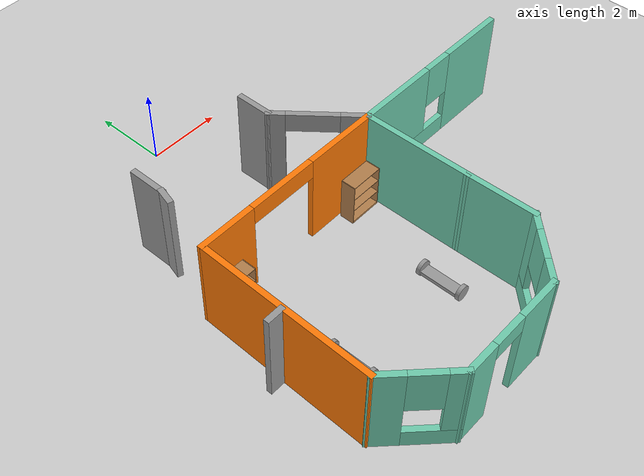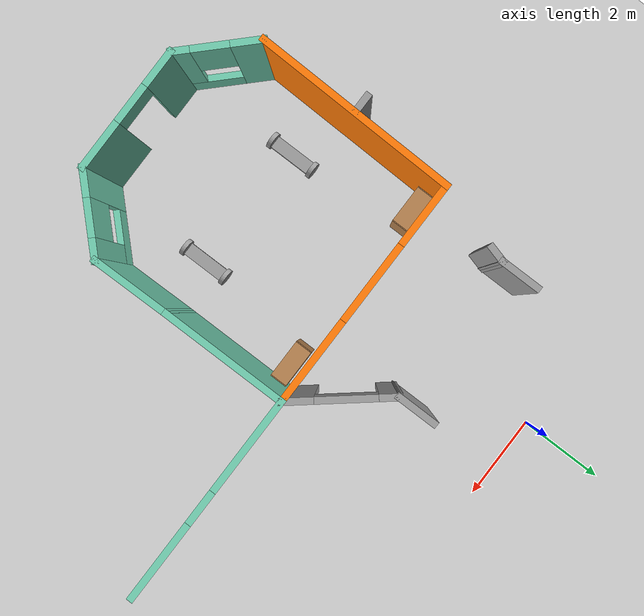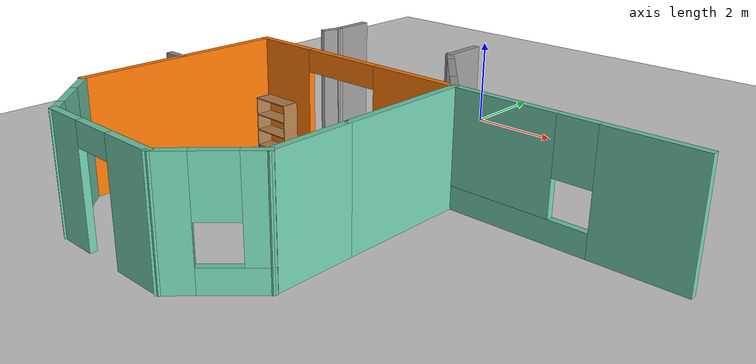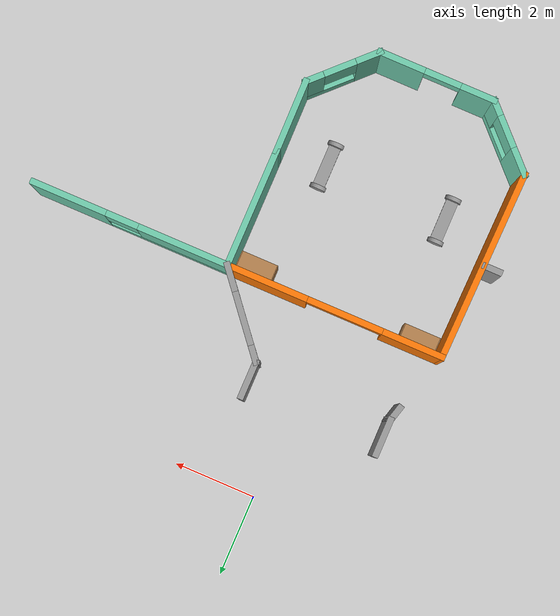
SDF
<sdf version="1.6">
 <world name="default">
  <model name="ground_plane">
   <static>1</static>
   <link name="link">
    <collision name="collision">
     <geometry><plane><normal>0 0 1</normal><size>100 100</size></plane></geometry>
     <surface>
      <contact><collide_bitmask>65535</collide_bitmask></contact>
      <friction><ode><mu>100</mu><mu2>50</mu2></ode></friction>
     </surface>
    </collision>
    <visual name="visual">
     <cast_shadows>0</cast_shadows>
     <geometry><plane><normal>0 0 1</normal><size>100 100</size></plane></geometry>
     <material>
      <script><uri>file://media/materials/scripts/gazebo.material</uri><name>Gazebo/Grey</name></script>
     </material>
    </visual>
   </link>
  </model>
  <model name="model">
   <pose>-1.34408 -2.0758 0 0 -0 0</pose>
   <link name="Wall_12">
    <pose>6.41224 -2.63039 0 0 -0 3.14159</pose>
    <visual name="Wall_12_Visual_0">
     <pose>-1.55241 0 1.25 0 -0 0</pose>
     <geometry><box><size>1.89517 0.15 2.5</size></box></geometry>
     <material>
      <script><uri>file://media/materials/scripts/gazebo.material</uri><name>Gazebo/Grey</name></script>
      <ambient>0.435294 0.796078 0.67451 1</ambient>
     </material>
     <meta><layer>0</layer></meta>
    </visual>
    <collision name="Wall_12_Collision_0">
     <geometry><box><size>1.89517 0.15 2.5</size></box></geometry>
     <pose>-1.55241 0 1.25 0 -0 0</pose>
    </collision>
    <visual name="Wall_12_Visual_1">
     <pose>0.947587 0 0.25 0 -0 0</pose>
     <geometry><box><size>3.10483 0.15 0.5</size></box></geometry>
     <material>
      <script><uri>file://media/materials/scripts/gazebo.material</uri><name>Gazebo/Grey</name></script>
      <ambient>0.435294 0.796078 0.67451 1</ambient>
     </material>
     <meta><layer>0</layer></meta>
    </visual>
    <collision name="Wall_12_Collision_1">
     <geometry><box><size>3.10483 0.15 0.5</size></box></geometry>
     <pose>0.947587 0 0.25 0 -0 0</pose>
    </collision>
    <visual name="Wall_12_Visual_2">
     <pose>1.34759 0 1.5 0 -0 0</pose>
     <geometry><box><size>2.30483 0.15 2</size></box></geometry>
     <material>
      <script><uri>file://media/materials/scripts/gazebo.material</uri><name>Gazebo/Grey</name></script>
      <ambient>0.435294 0.796078 0.67451 1</ambient>
     </material>
     <meta><layer>0</layer></meta>
    </visual>
    <collision name="Wall_12_Collision_2">
     <geometry><box><size>2.30483 0.15 2</size></box></geometry>
     <pose>1.34759 0 1.5 0 -0 0</pose>
    </collision>
    <visual name="Wall_12_Visual_3">
     <pose>-0.204827 0 1.9 0 -0 0</pose>
     <geometry><box><size>0.8 0.15 1.2</size></box></geometry>
     <material>
      <script><uri>file://media/materials/scripts/gazebo.material</uri><name>Gazebo/Grey</name></script>
      <ambient>0.435294 0.796078 0.67451 1</ambient>
     </material>
     <meta><layer>0</layer></meta>
    </visual>
    <collision name="Wall_12_Collision_3">
     <geometry><box><size>0.8 0.15 1.2</size></box></geometry>
     <pose>-0.204827 0 1.9 0 -0 0</pose>
    </collision>
   </link>
   <link name="Wall_13">
    <collision name="Wall_13_Collision">
     <geometry><box><size>3 0.15 2.5</size></box></geometry>
     <pose>0 0 1.25 0 -0 0</pose>
    </collision>
    <visual name="Wall_13_Visual">
     <pose>0 0 1.25 0 -0 0</pose>
     <geometry><box><size>3 0.15 2.5</size></box></geometry>
     <material>
      <script><uri>file://media/materials/scripts/gazebo.material</uri><name>Gazebo/Grey</name></script>
      <ambient>0.435294 0.796078 0.67451 1</ambient>
     </material>
     <meta><layer>0</layer></meta>
    </visual>
    <pose>3.98724 -4.05539 0 0 -0 -1.5708</pose>
   </link>
   <link name="Wall_58">
    <pose>-0.808686 -7.88447 0 0 -0 -0.785398</pose>
    <visual name="Wall_58_Visual_0">
     <pose>-0.62591 0 1.25 0 -0 0</pose>
     <geometry><box><size>0.74818 0.15 2.5</size></box></geometry>
     <material>
      <script><uri>file://media/materials/scripts/gazebo.material</uri><name>Gazebo/Grey</name></script>
      <ambient>0.435294 0.796078 0.67451 1</ambient>
     </material>
     <meta><layer>0</layer></meta>
    </visual>
    <collision name="Wall_58_Collision_0">
     <geometry><box><size>0.74818 0.15 2.5</size></box></geometry>
     <pose>-0.62591 0 1.25 0 -0 0</pose>
    </collision>
    <visual name="Wall_58_Visual_1">
     <pose>0.37409 0 0.25 0 -0 0</pose>
     <geometry><box><size>1.25182 0.15 0.5</size></box></geometry>
     <material>
      <script><uri>file://media/materials/scripts/gazebo.material</uri><name>Gazebo/Grey</name></script>
      <ambient>0.435294 0.796078 0.67451 1</ambient>
     </material>
     <meta><layer>0</layer></meta>
    </visual>
    <collision name="Wall_58_Collision_1">
     <geometry><box><size>1.25182 0.15 0.5</size></box></geometry>
     <pose>0.37409 0 0.25 0 -0 0</pose>
    </collision>
    <visual name="Wall_58_Visual_2">
     <pose>0.77409 0 1.5 0 -0 0</pose>
     <geometry><box><size>0.45182 0.15 2</size></box></geometry>
     <material>
      <script><uri>file://media/materials/scripts/gazebo.material</uri><name>Gazebo/Grey</name></script>
      <ambient>0.435294 0.796078 0.67451 1</ambient>
     </material>
     <meta><layer>0</layer></meta>
    </visual>
    <collision name="Wall_58_Collision_2">
     <geometry><box><size>0.45182 0.15 2</size></box></geometry>
     <pose>0.77409 0 1.5 0 -0 0</pose>
    </collision>
    <visual name="Wall_58_Visual_3">
     <pose>0.14818 0 1.9 0 -0 0</pose>
     <geometry><box><size>0.8 0.15 1.2</size></box></geometry>
     <material>
      <script><uri>file://media/materials/scripts/gazebo.material</uri><name>Gazebo/Grey</name></script>
      <ambient>0.435294 0.796078 0.67451 1</ambient>
     </material>
     <meta><layer>0</layer></meta>
    </visual>
    <collision name="Wall_58_Collision_3">
     <geometry><box><size>0.8 0.15 1.2</size></box></geometry>
     <pose>0.14818 0 1.9 0 -0 0</pose>
    </collision>
   </link>
   <link name="Wall_59">
    <pose>1.27039 -8.53854 0 0 -0 0</pose>
    <visual name="Wall_59_Visual_0">
     <pose>-1.04657 0 1.25 0 -0 0</pose>
     <geometry><box><size>0.906857 0.15 2.5</size></box></geometry>
     <material>
      <script><uri>file://media/materials/scripts/gazebo.material</uri><name>Gazebo/Grey</name></script>
      <ambient>0.435294 0.796078 0.67451 1</ambient>
     </material>
     <meta><layer>0</layer></meta>
    </visual>
    <collision name="Wall_59_Collision_0">
     <geometry><box><size>0.906857 0.15 2.5</size></box></geometry>
     <pose>-1.04657 0 1.25 0 -0 0</pose>
    </collision>
    <visual name="Wall_59_Visual_1">
     <pose>0.903429 0 1.25 0 -0 0</pose>
     <geometry><box><size>1.19314 0.15 2.5</size></box></geometry>
     <material>
      <script><uri>file://media/materials/scripts/gazebo.material</uri><name>Gazebo/Grey</name></script>
      <ambient>0.435294 0.796078 0.67451 1</ambient>
     </material>
     <meta><layer>0</layer></meta>
    </visual>
    <collision name="Wall_59_Collision_1">
     <geometry><box><size>1.19314 0.15 2.5</size></box></geometry>
     <pose>0.903429 0 1.25 0 -0 0</pose>
    </collision>
    <visual name="Wall_59_Visual_2">
     <pose>-0.143143 0 2.25 0 -0 0</pose>
     <geometry><box><size>0.9 0.15 0.5</size></box></geometry>
     <material>
      <script><uri>file://media/materials/scripts/gazebo.material</uri><name>Gazebo/Grey</name></script>
      <ambient>0.435294 0.796078 0.67451 1</ambient>
     </material>
     <meta><layer>0</layer></meta>
    </visual>
    <collision name="Wall_59_Collision_2">
     <geometry><box><size>0.9 0.15 0.5</size></box></geometry>
     <pose>-0.143143 0 2.25 0 -0 0</pose>
    </collision>
   </link>
   <link name="Wall_62">
    <pose>3.34946 -7.88447 0 0 -0 0.785398</pose>
    <visual name="Wall_62_Visual_0">
     <pose>-0.661474 0 1.25 0 -0 0</pose>
     <geometry><box><size>0.677052 0.15 2.5</size></box></geometry>
     <material>
      <script><uri>file://media/materials/scripts/gazebo.material</uri><name>Gazebo/Grey</name></script>
      <ambient>0.435294 0.796078 0.67451 1</ambient>
     </material>
     <meta><layer>0</layer></meta>
    </visual>
    <collision name="Wall_62_Collision_0">
     <geometry><box><size>0.677052 0.15 2.5</size></box></geometry>
     <pose>-0.661474 0 1.25 0 -0 0</pose>
    </collision>
    <visual name="Wall_62_Visual_1">
     <pose>0.338526 0 0.25 0 -0 0</pose>
     <geometry><box><size>1.32295 0.15 0.5</size></box></geometry>
     <material>
      <script><uri>file://media/materials/scripts/gazebo.material</uri><name>Gazebo/Grey</name></script>
      <ambient>0.435294 0.796078 0.67451 1</ambient>
     </material>
     <meta><layer>0</layer></meta>
    </visual>
    <collision name="Wall_62_Collision_1">
     <geometry><box><size>1.32295 0.15 0.5</size></box></geometry>
     <pose>0.338526 0 0.25 0 -0 0</pose>
    </collision>
    <visual name="Wall_62_Visual_2">
     <pose>0.738526 0 1.5 0 -0 0</pose>
     <geometry><box><size>0.522948 0.15 2</size></box></geometry>
     <material>
      <script><uri>file://media/materials/scripts/gazebo.material</uri><name>Gazebo/Grey</name></script>
      <ambient>0.435294 0.796078 0.67451 1</ambient>
     </material>
     <meta><layer>0</layer></meta>
    </visual>
    <collision name="Wall_62_Collision_2">
     <geometry><box><size>0.522948 0.15 2</size></box></geometry>
     <pose>0.738526 0 1.5 0 -0 0</pose>
    </collision>
    <visual name="Wall_62_Visual_3">
     <pose>0.077052 0 1.9 0 -0 0</pose>
     <geometry><box><size>0.8 0.15 1.2</size></box></geometry>
     <material>
      <script><uri>file://media/materials/scripts/gazebo.material</uri><name>Gazebo/Grey</name></script>
      <ambient>0.435294 0.796078 0.67451 1</ambient>
     </material>
     <meta><layer>0</layer></meta>
    </visual>
    <collision name="Wall_62_Collision_3">
     <geometry><box><size>0.8 0.15 1.2</size></box></geometry>
     <pose>0.077052 0 1.9 0 -0 0</pose>
    </collision>
   </link>
   <link name="Wall_63">
    <collision name="Wall_63_Collision">
     <geometry><box><size>1.90008 0.15 2.5</size></box></geometry>
     <pose>0 0 1.25 0 -0 0</pose>
    </collision>
    <visual name="Wall_63_Visual">
     <pose>0 0 1.25 0 -0 0</pose>
     <geometry><box><size>1.90008 0.15 2.5</size></box></geometry>
     <material>
      <script><uri>file://media/materials/scripts/gazebo.material</uri><name>Gazebo/Grey</name></script>
      <ambient>0.435294 0.796078 0.67451 1</ambient>
     </material>
     <meta><layer>0</layer></meta>
    </visual>
    <pose>3.99539 -6.35539 0 0 -0 1.58011</pose>
   </link>
   <link name="Wall_69">
    <collision name="Wall_69_Collision">
     <geometry><box><size>4.75109 0.15 2.5</size></box></geometry>
     <pose>0 0 1.25 0 -0 0</pose>
    </collision>
    <visual name="Wall_69_Visual">
     <pose>0 0 1.25 0 -0 0</pose>
     <geometry><box><size>4.75109 0.15 2.5</size></box></geometry>
     <material>
      <script><uri>file://media/materials/scripts/gazebo.material</uri><name>Gazebo/Grey</name></script>
      <ambient>0.996078 0.47451 0.0196078 1</ambient>
     </material>
     <meta><layer>0</layer></meta>
    </visual>
    <pose>-1.41276 -4.93039 0 0 -0 1.54906</pose>
   </link>
   <link name="Wall_71">
    <pose>1.31224 -2.63039 0 0 -0 0</pose>
    <visual name="Wall_71_Visual_0">
     <pose>-1.97562 0 1.25 0 -0 0</pose>
     <geometry><box><size>1.54876 0.15 2.5</size></box></geometry>
     <material>
      <script><uri>file://media/materials/scripts/gazebo.material</uri><name>Gazebo/Grey</name></script>
      <ambient>0.996078 0.47451 0.0196078 1</ambient>
     </material>
     <meta><layer>0</layer></meta>
    </visual>
    <collision name="Wall_71_Collision_0">
     <geometry><box><size>1.54876 0.15 2.5</size></box></geometry>
     <pose>-1.97562 0 1.25 0 -0 0</pose>
    </collision>
    <visual name="Wall_71_Visual_1">
     <pose>1.71382 0 1.25 0 -0 0</pose>
     <geometry><box><size>2.07235 0.15 2.5</size></box></geometry>
     <material>
      <script><uri>file://media/materials/scripts/gazebo.material</uri><name>Gazebo/Grey</name></script>
      <ambient>0.996078 0.47451 0.0196078 1</ambient>
     </material>
     <meta><layer>0</layer></meta>
    </visual>
    <collision name="Wall_71_Collision_1">
     <geometry><box><size>2.07235 0.15 2.5</size></box></geometry>
     <pose>1.71382 0 1.25 0 -0 0</pose>
    </collision>
    <visual name="Wall_71_Visual_2">
     <pose>-0.261794 0 2.25 0 -0 0</pose>
     <geometry><box><size>1.87889 0.15 0.5</size></box></geometry>
     <material>
      <script><uri>file://media/materials/scripts/gazebo.material</uri><name>Gazebo/Grey</name></script>
      <ambient>0.996078 0.47451 0.0196078 1</ambient>
     </material>
     <meta><layer>0</layer></meta>
    </visual>
    <collision name="Wall_71_Collision_2">
     <geometry><box><size>1.87889 0.15 0.5</size></box></geometry>
     <pose>-0.261794 0 2.25 0 -0 0</pose>
    </collision>
   </link>
   <link name="Wall_75">
    <collision name="Wall_75_Collision">
     <geometry><box><size>0.5 0.15 2.5</size></box></geometry>
     <pose>0 0 1.25 0 -0 0</pose>
    </collision>
    <visual name="Wall_75_Visual">
     <pose>0 0 1.25 0 -0 0</pose>
     <geometry><box><size>0.5 0.15 2.5</size></box></geometry>
     <material>
      <script><uri>file://media/materials/scripts/gazebo.material</uri><name>Gazebo/Grey</name></script>
      <ambient>0 0 0 1</ambient>
     </material>
     <meta><layer>0</layer></meta>
    </visual>
    <pose>-1.63295 -4.93634 0 0 -0 3.14159</pose>
   </link>
   <link name="Wall_87">
    <collision name="Wall_87_Collision">
     <geometry><box><size>1 0.15 2.5</size></box></geometry>
     <pose>0 0 1.25 0 -0 0</pose>
    </collision>
    <visual name="Wall_87_Visual">
     <pose>0 0 1.25 0 -0 0</pose>
     <geometry><box><size>1 0.15 2.5</size></box></geometry>
     <material>
      <script><uri>file://media/materials/scripts/gazebo.material</uri><name>Gazebo/Grey</name></script>
      <ambient>0 0 0 1</ambient>
     </material>
     <meta><layer>0</layer></meta>
    </visual>
    <pose>-0.84409 -0.418128 0 0 -0 -1.5708</pose>
   </link>
   <link name="Wall_88">
    <collision name="Wall_88_Collision">
     <geometry><box><size>0.5 0.15 2.5</size></box></geometry>
     <pose>0 0 1.25 0 -0 0</pose>
    </collision>
    <visual name="Wall_88_Visual">
     <pose>0 0 1.25 0 -0 0</pose>
     <geometry><box><size>0.5 0.15 2.5</size></box></geometry>
     <material>
      <script><uri>file://media/materials/scripts/gazebo.material</uri><name>Gazebo/Grey</name></script>
      <ambient>0 0 0 1</ambient>
     </material>
     <meta><layer>0</layer></meta>
    </visual>
    <pose>-0.889384 -1.01217 0 0 -0 -1.8326</pose>
   </link>
   <link name="Wall_91">
    <collision name="Wall_91_Collision">
     <geometry><box><size>1 0.15 2.5</size></box></geometry>
     <pose>0 0 1.25 0 -0 0</pose>
    </collision>
    <visual name="Wall_91_Visual">
     <pose>0 0 1.25 0 -0 0</pose>
     <geometry><box><size>1 0.15 2.5</size></box></geometry>
     <material>
      <script><uri>file://media/materials/scripts/gazebo.material</uri><name>Gazebo/Grey</name></script>
      <ambient>0 0 0 1</ambient>
     </material>
     <meta><layer>0</layer></meta>
    </visual>
    <pose>2.50591 -0.418128 0 0 -0 -1.5708</pose>
   </link>
   <link name="Wall_92">
    <pose>3.24657 -1.73676 0 0 -0 -0.878724</pose>
    <visual name="Wall_92_Visual_0">
     <pose>-0.9975 0 1.25 0 -0 0</pose>
     <geometry><box><size>0.476348 0.15 2.5</size></box></geometry>
     <material>
      <script><uri>file://media/materials/scripts/gazebo.material</uri><name>Gazebo/Grey</name></script>
      <ambient>0 0 0 1</ambient>
     </material>
     <meta><layer>0</layer></meta>
    </visual>
    <collision name="Wall_92_Collision_0">
     <geometry><box><size>0.476348 0.15 2.5</size></box></geometry>
     <pose>-0.9975 0 1.25 0 -0 0</pose>
    </collision>
    <visual name="Wall_92_Visual_1">
     <pose>0.879986 0 1.25 0 -0 0</pose>
     <geometry><box><size>0.711375 0.15 2.5</size></box></geometry>
     <material>
      <script><uri>file://media/materials/scripts/gazebo.material</uri><name>Gazebo/Grey</name></script>
      <ambient>0 0 0 1</ambient>
     </material>
     <meta><layer>0</layer></meta>
    </visual>
    <collision name="Wall_92_Collision_1">
     <geometry><box><size>0.711375 0.15 2.5</size></box></geometry>
     <pose>0.879986 0 1.25 0 -0 0</pose>
    </collision>
    <visual name="Wall_92_Visual_2">
     <pose>-0.117514 0 2.25 0 -0 0</pose>
     <geometry><box><size>1.28362 0.15 0.5</size></box></geometry>
     <material>
      <script><uri>file://media/materials/scripts/gazebo.material</uri><name>Gazebo/Grey</name></script>
      <ambient>0 0 0 1</ambient>
     </material>
     <meta><layer>0</layer></meta>
    </visual>
    <collision name="Wall_92_Collision_2">
     <geometry><box><size>1.28362 0.15 0.5</size></box></geometry>
     <pose>-0.117514 0 2.25 0 -0 0</pose>
    </collision>
   </link>
   <static>1</static>
  </model>
  <model name="model_0">
   <link name="link_2">
    <inertial>
     <mass>1</mass>
     <inertia>
      <ixx>0.166667</ixx>
      <ixy>0</ixy>
      <ixz>0</ixz>
      <iyy>0.166667</iyy>
      <iyz>0</iyz>
      <izz>0.166667</izz>
     </inertia>
    </inertial>
    <pose>0 0 -0.029999 0 -0 0</pose>
    <visual name="visual">
     <geometry><box><size>0.3 1 0.1</size></box></geometry>
     <material>
      <lighting>1</lighting>
      <script><uri>file://media/materials/scripts/gazebo.material</uri><name>Gazebo/Grey</name></script>
      <shader type="pixel"><normal_map>__default__</normal_map></shader>
      <ambient>0.3 0.3 0.3 1</ambient>
      <diffuse>0.7 0.7 0.7 1</diffuse>
      <specular>0.01 0.01 0.01 1</specular>
      <emissive>0 0 0 1</emissive>
     </material>
    </visual>
    <collision name="collision">
     <geometry><box><size>0.3 1 0.1</size></box></geometry>
     <surface>
      <friction>
       <ode><mu>1</mu><mu2>1</mu2><fdir1>0 0 0</fdir1><slip1>0</slip1><slip2>0</slip2></ode>
       <torsional>
        <coefficient>1</coefficient>
        <patch_radius>0</patch_radius>
        <surface_radius>0</surface_radius>
        <use_patch_radius>1</use_patch_radius>
        <ode><slip>0</slip></ode>
       </torsional>
      </friction>
      <bounce><restitution_coefficient>0</restitution_coefficient><threshold>1e+06</threshold></bounce>
      <contact>
       <collide_without_contact>0</collide_without_contact>
       <collide_without_contact_bitmask>1</collide_without_contact_bitmask>
       <collide_bitmask>1</collide_bitmask>
       <ode>
        <soft_cfm>0</soft_cfm>
        <soft_erp>0.2</soft_erp>
        <kp>1e+13</kp>
        <kd>1</kd>
        <max_vel>0.01</max_vel>
        <min_depth>0</min_depth>
       </ode>
       <bullet>
        <split_impulse>1</split_impulse>
        <split_impulse_penetration_threshold>-0.01</split_impulse_penetration_threshold>
        <soft_cfm>0</soft_cfm>
        <soft_erp>0.2</soft_erp>
        <kp>1e+13</kp>
        <kd>1</kd>
       </bullet>
      </contact>
     </surface>
    </collision>
   </link>
   <link name="link_4">
    <inertial>
     <mass>1</mass>
     <inertia><ixx>0.145833</ixx><ixy>0</ixy><ixz>0</ixz><iyy>0.145833</iyy><iyz>0</iyz><izz>0.125</izz></inertia>
    </inertial>
    <pose>0 -0.550019 0.014997 1.5707 -0 0</pose>
    <visual name="visual">
     <geometry><cylinder><radius>0.2</radius><length>0.1</length></cylinder></geometry>
     <material>
      <lighting>1</lighting>
      <script><uri>file://media/materials/scripts/gazebo.material</uri><name>Gazebo/Grey</name></script>
      <shader type="pixel"><normal_map>__default__</normal_map></shader>
      <ambient>0.3 0.3 0.3 1</ambient>
      <diffuse>0.7 0.7 0.7 1</diffuse>
      <specular>0.01 0.01 0.01 1</specular>
      <emissive>0 0 0 1</emissive>
     </material>
    </visual>
    <collision name="collision">
     <geometry><cylinder><radius>0.2</radius><length>0.1</length></cylinder></geometry>
     <surface>
      <friction>
       <ode><mu>1</mu><mu2>1</mu2><fdir1>0 0 0</fdir1><slip1>0</slip1><slip2>0</slip2></ode>
       <torsional>
        <coefficient>1</coefficient>
        <patch_radius>0</patch_radius>
        <surface_radius>0</surface_radius>
        <use_patch_radius>1</use_patch_radius>
        <ode><slip>0</slip></ode>
       </torsional>
      </friction>
      <bounce><restitution_coefficient>0</restitution_coefficient><threshold>1e+06</threshold></bounce>
      <contact>
       <collide_without_contact>0</collide_without_contact>
       <collide_without_contact_bitmask>1</collide_without_contact_bitmask>
       <collide_bitmask>1</collide_bitmask>
       <ode>
        <soft_cfm>0</soft_cfm>
        <soft_erp>0.2</soft_erp>
        <kp>1e+13</kp>
        <kd>1</kd>
        <max_vel>0.01</max_vel>
        <min_depth>0</min_depth>
       </ode>
       <bullet>
        <split_impulse>1</split_impulse>
        <split_impulse_penetration_threshold>-0.01</split_impulse_penetration_threshold>
        <soft_cfm>0</soft_cfm>
        <soft_erp>0.2</soft_erp>
        <kp>1e+13</kp>
        <kd>1</kd>
       </bullet>
      </contact>
     </surface>
    </collision>
   </link>
   <link name="link_4_clone">
    <inertial>
     <mass>1</mass>
     <inertia><ixx>0.145833</ixx><ixy>0</ixy><ixz>0</ixz><iyy>0.145833</iyy><iyz>0</iyz><izz>0.125</izz></inertia>
    </inertial>
    <pose>0 0.550019 0.015001 1.5707 -0 0</pose>
    <visual name="visual">
     <geometry><cylinder><radius>0.2</radius><length>0.1</length></cylinder></geometry>
     <material>
      <lighting>1</lighting>
      <script><uri>file://media/materials/scripts/gazebo.material</uri><name>Gazebo/Grey</name></script>
      <shader type="pixel"><normal_map>__default__</normal_map></shader>
      <ambient>0.3 0.3 0.3 1</ambient>
      <diffuse>0.7 0.7 0.7 1</diffuse>
      <specular>0.01 0.01 0.01 1</specular>
      <emissive>0 0 0 1</emissive>
     </material>
    </visual>
    <collision name="collision">
     <geometry><cylinder><radius>0.2</radius><length>0.1</length></cylinder></geometry>
     <surface>
      <friction>
       <ode><mu>1</mu><mu2>1</mu2><fdir1>0 0 0</fdir1><slip1>0</slip1><slip2>0</slip2></ode>
       <torsional>
        <coefficient>1</coefficient>
        <patch_radius>0</patch_radius>
        <surface_radius>0</surface_radius>
        <use_patch_radius>1</use_patch_radius>
        <ode><slip>0</slip></ode>
       </torsional>
      </friction>
      <bounce><restitution_coefficient>0</restitution_coefficient><threshold>1e+06</threshold></bounce>
      <contact>
       <collide_without_contact>0</collide_without_contact>
       <collide_without_contact_bitmask>1</collide_without_contact_bitmask>
       <collide_bitmask>1</collide_bitmask>
       <ode>
        <soft_cfm>0</soft_cfm>
        <soft_erp>0.2</soft_erp>
        <kp>1e+13</kp>
        <kd>1</kd>
        <max_vel>0.01</max_vel>
        <min_depth>0</min_depth>
       </ode>
       <bullet>
        <split_impulse>1</split_impulse>
        <split_impulse_penetration_threshold>-0.01</split_impulse_penetration_threshold>
        <soft_cfm>0</soft_cfm>
        <soft_erp>0.2</soft_erp>
        <kp>1e+13</kp>
        <kd>1</kd>
       </bullet>
      </contact>
     </surface>
    </collision>
   </link>
   <joint name="link_2_JOINT_3" type="revolute">
    <parent>link_2</parent>
    <child>link_4</child>
    <axis>
     <xyz>1 0 0</xyz>
     <use_parent_model_frame>0</use_parent_model_frame>
     <limit>
      <lower>-1.79769e+308</lower>
      <upper>1.79769e+308</upper>
      <effort>-1</effort>
      <velocity>-1</velocity>
     </limit>
     <dynamics>
      <spring_reference>0</spring_reference>
      <spring_stiffness>0</spring_stiffness>
      <damping>0</damping>
     </dynamics>
    </axis>
    <physics>
     <ode><limit><cfm>0</cfm><erp>0.2</erp></limit><suspension><cfm>0</cfm><erp>0.2</erp></suspension></ode>
    </physics>
   </joint>
   <joint name="link_2_JOINT_4" type="revolute">
    <parent>link_2</parent>
    <child>link_4_clone</child>
    <axis>
     <xyz>1 0 0</xyz>
     <use_parent_model_frame>0</use_parent_model_frame>
     <limit>
      <lower>-1.79769e+308</lower>
      <upper>1.79769e+308</upper>
      <effort>-1</effort>
      <velocity>-1</velocity>
     </limit>
     <dynamics>
      <spring_reference>0</spring_reference>
      <spring_stiffness>0</spring_stiffness>
      <damping>0</damping>
     </dynamics>
    </axis>
    <physics>
     <ode><limit><cfm>0</cfm><erp>0.2</erp></limit><suspension><cfm>0</cfm><erp>0.2</erp></suspension></ode>
    </physics>
   </joint>
   <static>0</static>
   <pose>1.5094 -7.96296 0.184998 -8e-06 -1e-06 0</pose>
  </model>
  <model name="model_1">
   <link name="link_2">
    <inertial>
     <mass>1</mass>
     <inertia>
      <ixx>0.166667</ixx>
      <ixy>0</ixy>
      <ixz>0</ixz>
      <iyy>0.166667</iyy>
      <iyz>0</iyz>
      <izz>0.166667</izz>
     </inertia>
    </inertial>
    <pose>0 0 -0.029999 0 -0 0</pose>
    <visual name="visual">
     <geometry><box><size>0.3 1 0.1</size></box></geometry>
     <material>
      <lighting>1</lighting>
      <script><uri>file://media/materials/scripts/gazebo.material</uri><name>Gazebo/Grey</name></script>
      <shader type="pixel"><normal_map>__default__</normal_map></shader>
      <ambient>0.3 0.3 0.3 1</ambient>
      <diffuse>0.7 0.7 0.7 1</diffuse>
      <specular>0.01 0.01 0.01 1</specular>
      <emissive>0 0 0 1</emissive>
     </material>
    </visual>
    <collision name="collision">
     <geometry><box><size>0.3 1 0.1</size></box></geometry>
     <surface>
      <friction>
       <ode><mu>1</mu><mu2>1</mu2><fdir1>0 0 0</fdir1><slip1>0</slip1><slip2>0</slip2></ode>
       <torsional>
        <coefficient>1</coefficient>
        <patch_radius>0</patch_radius>
        <surface_radius>0</surface_radius>
        <use_patch_radius>1</use_patch_radius>
        <ode><slip>0</slip></ode>
       </torsional>
      </friction>
      <bounce><restitution_coefficient>0</restitution_coefficient><threshold>1e+06</threshold></bounce>
      <contact>
       <collide_without_contact>0</collide_without_contact>
       <collide_without_contact_bitmask>1</collide_without_contact_bitmask>
       <collide_bitmask>1</collide_bitmask>
       <ode>
        <soft_cfm>0</soft_cfm>
        <soft_erp>0.2</soft_erp>
        <kp>1e+13</kp>
        <kd>1</kd>
        <max_vel>0.01</max_vel>
        <min_depth>0</min_depth>
       </ode>
       <bullet>
        <split_impulse>1</split_impulse>
        <split_impulse_penetration_threshold>-0.01</split_impulse_penetration_threshold>
        <soft_cfm>0</soft_cfm>
        <soft_erp>0.2</soft_erp>
        <kp>1e+13</kp>
        <kd>1</kd>
       </bullet>
      </contact>
     </surface>
    </collision>
   </link>
   <link name="link_4">
    <inertial>
     <mass>1</mass>
     <inertia><ixx>0.145833</ixx><ixy>0</ixy><ixz>0</ixz><iyy>0.145833</iyy><iyz>0</iyz><izz>0.125</izz></inertia>
    </inertial>
    <pose>0 -0.550019 0.014997 1.5707 -0 0</pose>
    <visual name="visual">
     <geometry><cylinder><radius>0.2</radius><length>0.1</length></cylinder></geometry>
     <material>
      <lighting>1</lighting>
      <script><uri>file://media/materials/scripts/gazebo.material</uri><name>Gazebo/Grey</name></script>
      <shader type="pixel"><normal_map>__default__</normal_map></shader>
      <ambient>0.3 0.3 0.3 1</ambient>
      <diffuse>0.7 0.7 0.7 1</diffuse>
      <specular>0.01 0.01 0.01 1</specular>
      <emissive>0 0 0 1</emissive>
     </material>
    </visual>
    <collision name="collision">
     <geometry><cylinder><radius>0.2</radius><length>0.1</length></cylinder></geometry>
     <surface>
      <friction>
       <ode><mu>1</mu><mu2>1</mu2><fdir1>0 0 0</fdir1><slip1>0</slip1><slip2>0</slip2></ode>
       <torsional>
        <coefficient>1</coefficient>
        <patch_radius>0</patch_radius>
        <surface_radius>0</surface_radius>
        <use_patch_radius>1</use_patch_radius>
        <ode><slip>0</slip></ode>
       </torsional>
      </friction>
      <bounce><restitution_coefficient>0</restitution_coefficient><threshold>1e+06</threshold></bounce>
      <contact>
       <collide_without_contact>0</collide_without_contact>
       <collide_without_contact_bitmask>1</collide_without_contact_bitmask>
       <collide_bitmask>1</collide_bitmask>
       <ode>
        <soft_cfm>0</soft_cfm>
        <soft_erp>0.2</soft_erp>
        <kp>1e+13</kp>
        <kd>1</kd>
        <max_vel>0.01</max_vel>
        <min_depth>0</min_depth>
       </ode>
       <bullet>
        <split_impulse>1</split_impulse>
        <split_impulse_penetration_threshold>-0.01</split_impulse_penetration_threshold>
        <soft_cfm>0</soft_cfm>
        <soft_erp>0.2</soft_erp>
        <kp>1e+13</kp>
        <kd>1</kd>
       </bullet>
      </contact>
     </surface>
    </collision>
   </link>
   <link name="link_4_clone">
    <inertial>
     <mass>1</mass>
     <inertia><ixx>0.145833</ixx><ixy>0</ixy><ixz>0</ixz><iyy>0.145833</iyy><iyz>0</iyz><izz>0.125</izz></inertia>
    </inertial>
    <pose>0 0.550019 0.015001 1.5707 -0 0</pose>
    <visual name="visual">
     <geometry><cylinder><radius>0.2</radius><length>0.1</length></cylinder></geometry>
     <material>
      <lighting>1</lighting>
      <script><uri>file://media/materials/scripts/gazebo.material</uri><name>Gazebo/Grey</name></script>
      <shader type="pixel"><normal_map>__default__</normal_map></shader>
      <ambient>0.3 0.3 0.3 1</ambient>
      <diffuse>0.7 0.7 0.7 1</diffuse>
      <specular>0.01 0.01 0.01 1</specular>
      <emissive>0 0 0 1</emissive>
     </material>
    </visual>
    <collision name="collision">
     <geometry><cylinder><radius>0.2</radius><length>0.1</length></cylinder></geometry>
     <surface>
      <friction>
       <ode><mu>1</mu><mu2>1</mu2><fdir1>0 0 0</fdir1><slip1>0</slip1><slip2>0</slip2></ode>
       <torsional>
        <coefficient>1</coefficient>
        <patch_radius>0</patch_radius>
        <surface_radius>0</surface_radius>
        <use_patch_radius>1</use_patch_radius>
        <ode><slip>0</slip></ode>
       </torsional>
      </friction>
      <bounce><restitution_coefficient>0</restitution_coefficient><threshold>1e+06</threshold></bounce>
      <contact>
       <collide_without_contact>0</collide_without_contact>
       <collide_without_contact_bitmask>1</collide_without_contact_bitmask>
       <collide_bitmask>1</collide_bitmask>
       <ode>
        <soft_cfm>0</soft_cfm>
        <soft_erp>0.2</soft_erp>
        <kp>1e+13</kp>
        <kd>1</kd>
        <max_vel>0.01</max_vel>
        <min_depth>0</min_depth>
       </ode>
       <bullet>
        <split_impulse>1</split_impulse>
        <split_impulse_penetration_threshold>-0.01</split_impulse_penetration_threshold>
        <soft_cfm>0</soft_cfm>
        <soft_erp>0.2</soft_erp>
        <kp>1e+13</kp>
        <kd>1</kd>
       </bullet>
      </contact>
     </surface>
    </collision>
   </link>
   <joint name="link_2_JOINT_3" type="revolute">
    <parent>link_2</parent>
    <child>link_4</child>
    <axis>
     <xyz>1 0 0</xyz>
     <use_parent_model_frame>0</use_parent_model_frame>
     <limit>
      <lower>-1.79769e+308</lower>
      <upper>1.79769e+308</upper>
      <effort>-1</effort>
      <velocity>-1</velocity>
     </limit>
     <dynamics>
      <spring_reference>0</spring_reference>
      <spring_stiffness>0</spring_stiffness>
      <damping>0</damping>
     </dynamics>
    </axis>
    <physics>
     <ode><limit><cfm>0</cfm><erp>0.2</erp></limit><suspension><cfm>0</cfm><erp>0.2</erp></suspension></ode>
    </physics>
   </joint>
   <joint name="link_2_JOINT_4" type="revolute">
    <parent>link_2</parent>
    <child>link_4_clone</child>
    <axis>
     <xyz>1 0 0</xyz>
     <use_parent_model_frame>0</use_parent_model_frame>
     <limit>
      <lower>-1.79769e+308</lower>
      <upper>1.79769e+308</upper>
      <effort>-1</effort>
      <velocity>-1</velocity>
     </limit>
     <dynamics>
      <spring_reference>0</spring_reference>
      <spring_stiffness>0</spring_stiffness>
      <damping>0</damping>
     </dynamics>
    </axis>
    <physics>
     <ode><limit><cfm>0</cfm><erp>0.2</erp></limit><suspension><cfm>0</cfm><erp>0.2</erp></suspension></ode>
    </physics>
   </joint>
   <static>0</static>
   <pose>-1.58742 -7.87069 0.184998 -1e-05 -1e-06 -0</pose>
  </model>
  <model name="bookshelf_2">
   <static>1</static>
   <link name="link">
    <inertial><mass>1</mass></inertial>
    <collision name="back">
     <pose>0 0.005 0.6 0 -0 0</pose>
     <geometry><box><size>0.9 0.01 1.2</size></box></geometry>
    </collision>
    <visual name="visual1">
     <pose>0 0.005 0.6 0 -0 0</pose>
     <geometry><box><size>0.9 0.01 1.2</size></box></geometry>
     <material>
      <script><uri>file://media/materials/scripts/gazebo.material</uri><name>Gazebo/Wood</name></script>
     </material>
    </visual>
    <collision name="left_side">
     <pose>0.45 -0.195 0.6 0 -0 0</pose>
     <geometry><box><size>0.02 0.4 1.2</size></box></geometry>
    </collision>
    <visual name="visual2">
     <pose>0.45 -0.195 0.6 0 -0 0</pose>
     <geometry><box><size>0.02 0.4 1.2</size></box></geometry>
     <material>
      <script><uri>file://media/materials/scripts/gazebo.material</uri><name>Gazebo/Wood</name></script>
     </material>
    </visual>
    <collision name="right_side">
     <pose>-0.45 -0.195 0.6 0 -0 0</pose>
     <geometry><box><size>0.02 0.4 1.2</size></box></geometry>
    </collision>
    <visual name="visual3">
     <pose>-0.45 -0.195 0.6 0 -0 0</pose>
     <geometry><box><size>0.02 0.4 1.2</size></box></geometry>
     <material>
      <script><uri>file://media/materials/scripts/gazebo.material</uri><name>Gazebo/Wood</name></script>
     </material>
    </visual>
    <collision name="bottom">
     <pose>0 -0.195 0.03 0 -0 0</pose>
     <geometry><box><size>0.88 0.4 0.06</size></box></geometry>
    </collision>
    <visual name="visual4">
     <pose>0 -0.195 0.03 0 -0 0</pose>
     <geometry><box><size>0.88 0.4 0.06</size></box></geometry>
     <material>
      <script><uri>file://media/materials/scripts/gazebo.material</uri><name>Gazebo/Wood</name></script>
     </material>
    </visual>
    <collision name="top">
     <pose>0 -0.195 1.19 0 -0 0</pose>
     <geometry><box><size>0.88 0.4 0.02</size></box></geometry>
    </collision>
    <visual name="visual5">
     <pose>0 -0.195 1.19 0 -0 0</pose>
     <geometry><box><size>0.88 0.4 0.02</size></box></geometry>
     <material>
      <script><uri>file://media/materials/scripts/gazebo.material</uri><name>Gazebo/Wood</name></script>
     </material>
    </visual>
    <collision name="low_shelf">
     <pose>0 -0.195 0.43 0 -0 0</pose>
     <geometry><box><size>0.88 0.4 0.02</size></box></geometry>
    </collision>
    <visual name="visual6">
     <pose>0 -0.195 0.43 0 -0 0</pose>
     <geometry><box><size>0.88 0.4 0.02</size></box></geometry>
     <material>
      <script><uri>file://media/materials/scripts/gazebo.material</uri><name>Gazebo/Wood</name></script>
     </material>
    </visual>
    <collision name="high_shelf">
     <pose>0 -0.195 0.8 0 -0 0</pose>
     <geometry><box><size>0.88 0.4 0.02</size></box></geometry>
    </collision>
    <visual name="visual7">
     <pose>0 -0.195 0.8 0 -0 0</pose>
     <geometry><box><size>0.88 0.4 0.02</size></box></geometry>
     <material>
      <script><uri>file://media/materials/scripts/gazebo.material</uri><name>Gazebo/Wood</name></script>
     </material>
    </visual>
   </link>
   <pose>2.06306 -4.83875 0 0 -0 0</pose>
  </model>
  <model name="bookshelf_3">
   <static>1</static>
   <link name="link">
    <inertial><mass>1</mass></inertial>
    <collision name="back">
     <pose>0 0.005 0.6 0 -0 0</pose>
     <geometry><box><size>0.9 0.01 1.2</size></box></geometry>
    </collision>
    <visual name="visual1">
     <pose>0 0.005 0.6 0 -0 0</pose>
     <geometry><box><size>0.9 0.01 1.2</size></box></geometry>
     <material>
      <script><uri>file://media/materials/scripts/gazebo.material</uri><name>Gazebo/Wood</name></script>
     </material>
    </visual>
    <collision name="left_side">
     <pose>0.45 -0.195 0.6 0 -0 0</pose>
     <geometry><box><size>0.02 0.4 1.2</size></box></geometry>
    </collision>
    <visual name="visual2">
     <pose>0.45 -0.195 0.6 0 -0 0</pose>
     <geometry><box><size>0.02 0.4 1.2</size></box></geometry>
     <material>
      <script><uri>file://media/materials/scripts/gazebo.material</uri><name>Gazebo/Wood</name></script>
     </material>
    </visual>
    <collision name="right_side">
     <pose>-0.45 -0.195 0.6 0 -0 0</pose>
     <geometry><box><size>0.02 0.4 1.2</size></box></geometry>
    </collision>
    <visual name="visual3">
     <pose>-0.45 -0.195 0.6 0 -0 0</pose>
     <geometry><box><size>0.02 0.4 1.2</size></box></geometry>
     <material>
      <script><uri>file://media/materials/scripts/gazebo.material</uri><name>Gazebo/Wood</name></script>
     </material>
    </visual>
    <collision name="bottom">
     <pose>0 -0.195 0.03 0 -0 0</pose>
     <geometry><box><size>0.88 0.4 0.06</size></box></geometry>
    </collision>
    <visual name="visual4">
     <pose>0 -0.195 0.03 0 -0 0</pose>
     <geometry><box><size>0.88 0.4 0.06</size></box></geometry>
     <material>
      <script><uri>file://media/materials/scripts/gazebo.material</uri><name>Gazebo/Wood</name></script>
     </material>
    </visual>
    <collision name="top">
     <pose>0 -0.195 1.19 0 -0 0</pose>
     <geometry><box><size>0.88 0.4 0.02</size></box></geometry>
    </collision>
    <visual name="visual5">
     <pose>0 -0.195 1.19 0 -0 0</pose>
     <geometry><box><size>0.88 0.4 0.02</size></box></geometry>
     <material>
      <script><uri>file://media/materials/scripts/gazebo.material</uri><name>Gazebo/Wood</name></script>
     </material>
    </visual>
    <collision name="low_shelf">
     <pose>0 -0.195 0.43 0 -0 0</pose>
     <geometry><box><size>0.88 0.4 0.02</size></box></geometry>
    </collision>
    <visual name="visual6">
     <pose>0 -0.195 0.43 0 -0 0</pose>
     <geometry><box><size>0.88 0.4 0.02</size></box></geometry>
     <material>
      <script><uri>file://media/materials/scripts/gazebo.material</uri><name>Gazebo/Wood</name></script>
     </material>
    </visual>
    <collision name="high_shelf">
     <pose>0 -0.195 0.8 0 -0 0</pose>
     <geometry><box><size>0.88 0.4 0.02</size></box></geometry>
    </collision>
    <visual name="visual7">
     <pose>0 -0.195 0.8 0 -0 0</pose>
     <geometry><box><size>0.88 0.4 0.02</size></box></geometry>
     <material>
      <script><uri>file://media/materials/scripts/gazebo.material</uri><name>Gazebo/Wood</name></script>
     </material>
    </visual>
   </link>
   <pose>-2.12049 -4.77752 0 0 -0 0</pose>
  </model>
 </world>
</sdf>
